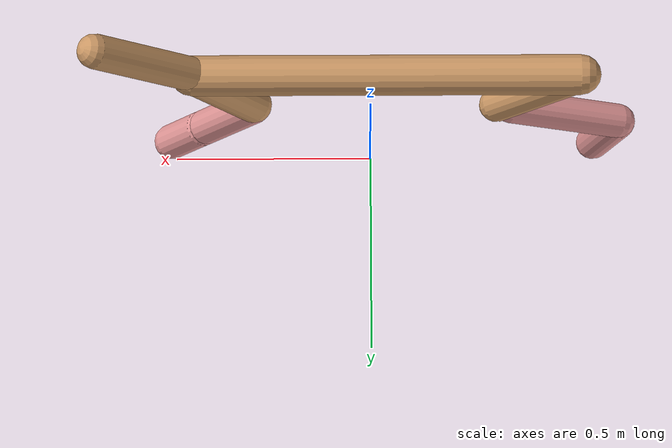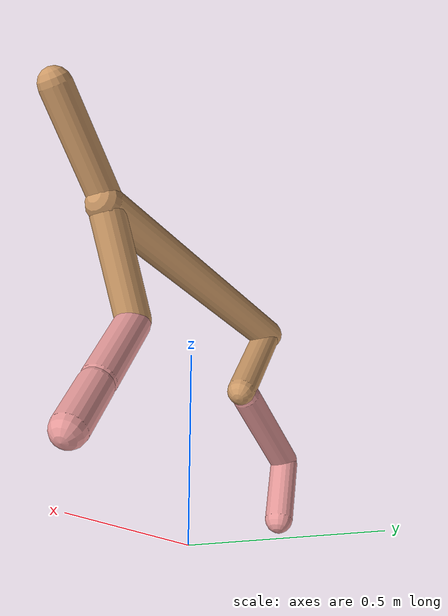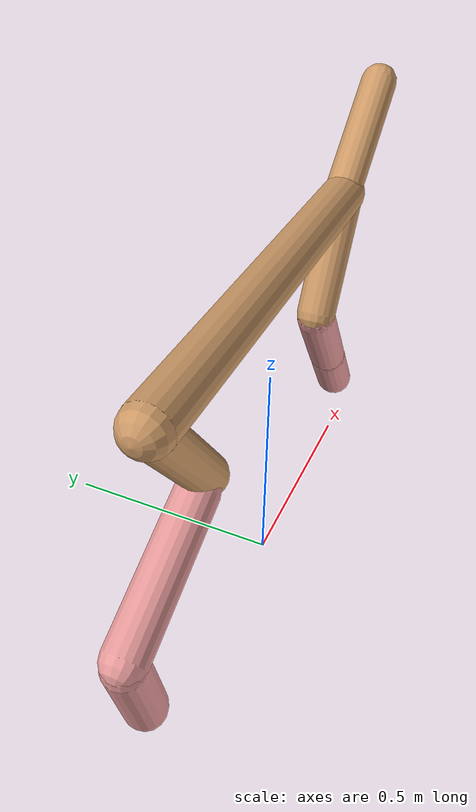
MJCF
<mujoco model="cheetah">
  <compiler angle="radian" coordinate="local" inertiafromgeom="true" settotalmass="14" />
  <default>
    <joint armature=".1" damping=".01" limited="true" solimplimit="0 .8 .03" solreflimit=".02 1" stiffness="8" />
    <geom conaffinity="0" condim="3" contype="1" friction="0.8 .1 .1" rgba="0.8 0.6 .4 1" solimp="0.0 0.8 0.01" solref="0.02 1" />
    <motor ctrllimited="true" ctrlrange="-1 1" />
  </default>
  <size nstack="300000" nuser_geom="1" />
  <option gravity="0 0 -9.81" timestep="0.01" />
  <worldbody>
    <body name="torso" pos="0.0 0.0 0.7391064802493494">
      <joint armature="0" axis="1 0 0" damping="0" limited="false" name="ignorex" pos="0 0 0" stiffness="0" type="slide" />
      <joint armature="0" axis="0 0 1" damping="0" limited="false" name="ignorez" pos="0 0 0" stiffness="0" type="slide" />
      <joint armature="0" axis="0 1 0" damping="0" limited="false" name="ignorey" pos="0 0 0" stiffness="0" type="hinge" />
      <geom fromto="-0.5 0.0 0.0 0.4272878998742514 0.0 0.0" name="torso" size="0.04839448728168985" type="capsule" />
      <geom axisangle="0 1 0 .87" name="head" pos="0.5272878998742514 0.0 0.1" size="0.04150350355183764 0.15" type="capsule" />

      <body name="bthigh" pos="-.5 0 0">
        <joint axis="0 1 0" damping="6" name="bthigh" pos="0 0 0" range="-.52 1.05" stiffness="240" type="hinge" />
        <geom axisangle="0 1 0 -3.8" name="bthigh" pos="0.10170263652956224 0.0 -0.1322134274884309" size="0.04240075935695665 0.14779253153936373" type="capsule" />
        <body name="bshin" pos="0.16340527305912447 0.0 -0.2544268549768618">
          <joint axis="0 1 0" damping="4.5" name="bshin" pos="0 0 0" range="-.785 .785" stiffness="180" type="hinge" />
          <geom axisangle="0 1 0 -2.03" name="bshin" pos="-0.14258384428330875 0.0 -0.07129192214165438" rgba="0.9 0.6 0.6 1" size="0.04240075935695665 0.15288882573037627" type="capsule" />
          <body name="bfoot" pos="-0.2851676885666175 0.0 -0.14258384428330875">
            <joint axis="0 1 0" damping="3" name="bfoot" pos="0 0 0" range="-.4 .785" stiffness="120" type="hinge" />
            <geom axisangle="0 1 0 -.27" name="bfoot" pos="0.030534897937224637 0.0 -0.09872950333035967" rgba="0.9 0.6 0.6 1" size="0.04240075935695665 0.0958103307910358" type="capsule" />
            <inertial mass="10" />
          </body>
        </body>
      </body>
      <body name="fthigh" pos="0.4272878998742514 0.0 0.0">
        <joint axis="0 1 0" damping="4.5" name="fthigh" pos="0 0 0" range="-1.5 0.8" stiffness="180" type="hinge" />
        <geom axisangle="0 1 0 .52" name="fthigh" pos="-0.07274133343822978 0.0 -0.12469942875125103" size="0.044476083736131454 0.13844054589243043" type="capsule" />
        <body name="fshin" pos="-0.14548266687645955 0.0 -0.24939885750250207">
          <joint axis="0 1 0" damping="3" name="fshin" pos="0 0 0" range="-1.2 1.1" stiffness="120" type="hinge" />
          <geom axisangle="0 1 0 -.6" name="fshin" pos="0.06753873046724904 0.0 -0.09351516526234482" rgba="0.9 0.6 0.6 1" size="0.044476083736131454 0.11033607416990696" type="capsule" />
          <body name="ffoot" pos="0.13507746093449807 0.0 -0.18703033052468965">
            <joint axis="0 1 0" damping="1.5" name="ffoot" pos="0 0 0" range="-3.1 -0.3" stiffness="60" type="hinge" />
            <geom axisangle="0 1 0 -.6" name="ffoot" pos="0.04654842973274801 0.0 -0.07240866847316359" rgba="0.9 0.6 0.6 1" size="0.044476083736131454 0.07286344520654234" type="capsule" />
            <inertial mass="10" />
          </body>
        </body>
      </body>
    </body>
  </worldbody>
  <actuator>
    <motor gear="120" joint="bthigh" name="bthigh" />
    <motor gear="90" joint="bshin" name="bshin" />
    <motor gear="60" joint="bfoot" name="bfoot" />
    <motor gear="120" joint="fthigh" name="fthigh" />
    <motor gear="60" joint="fshin" name="fshin" />
    <motor gear="30" joint="ffoot" name="ffoot" />
  </actuator>
</mujoco>
